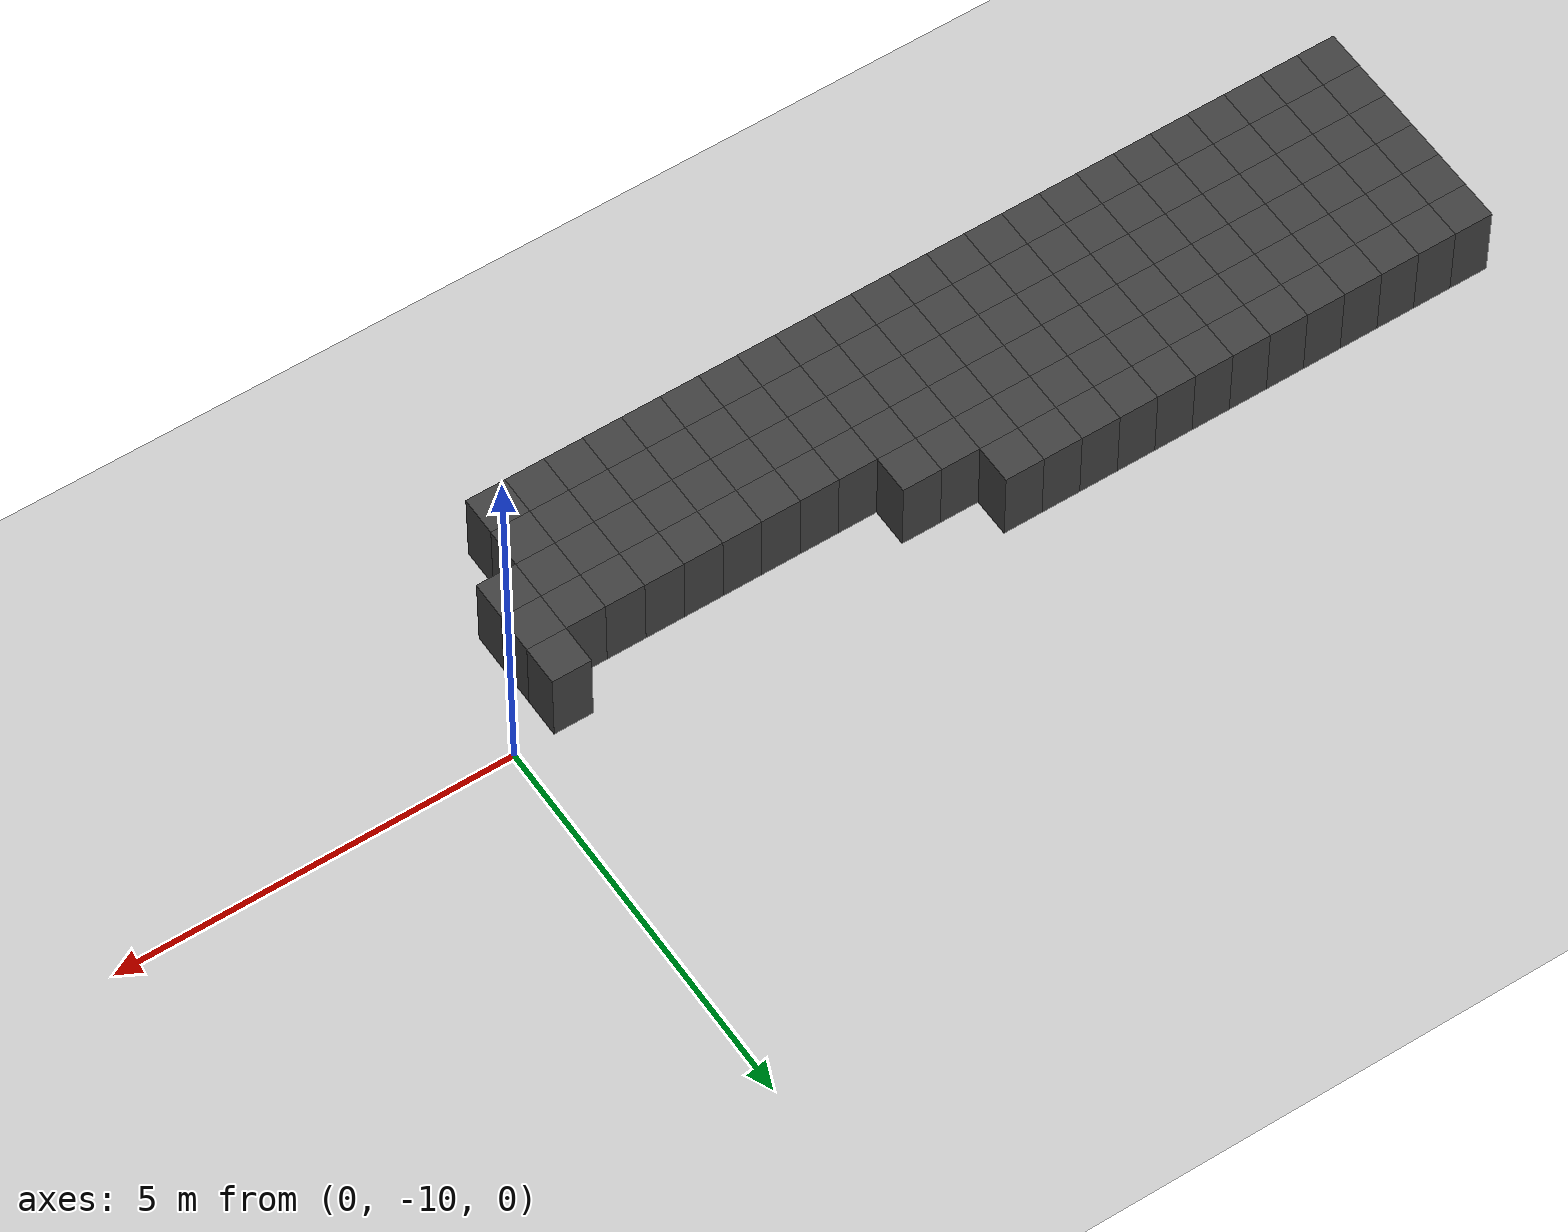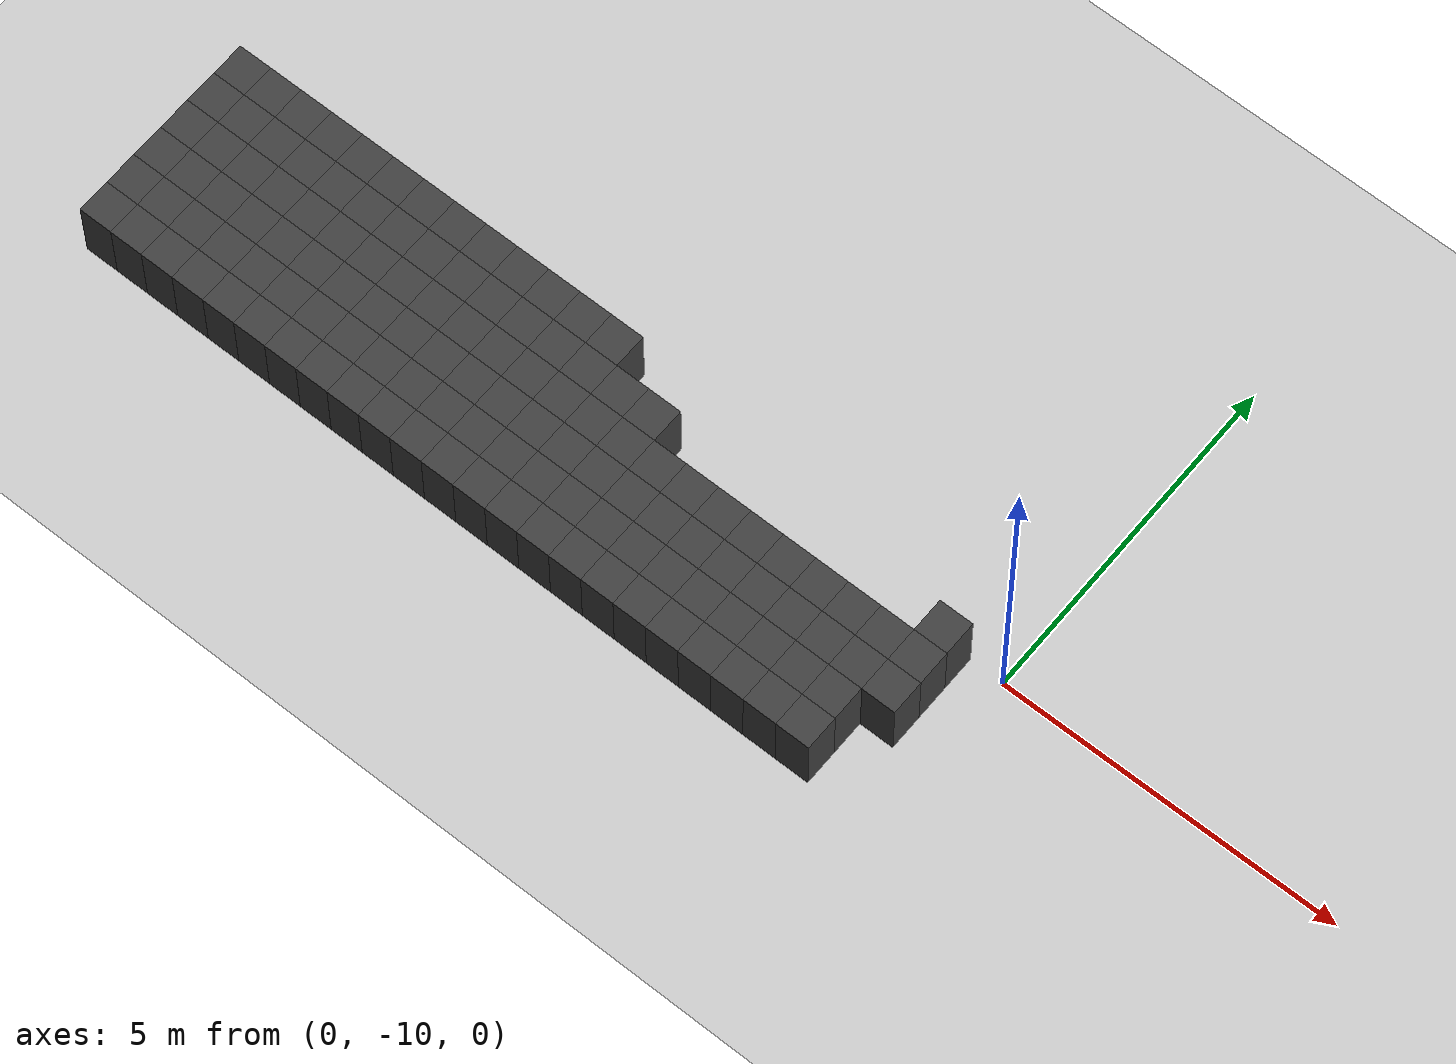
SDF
<sdf version="1.7">
 <world name="map_14074">
  <model name="ground_plane">
   <static>true</static>
   <link name="link">
    <collision name="collision">
     <geometry><plane><normal>0 0 1</normal><size>200 200</size></plane></geometry>
    </collision>
    <visual name="visual">
     <geometry><plane><normal>0 0 1</normal><size>200 200</size></plane></geometry>
     <material><ambient>0.8 0.8 0.8 1</ambient><diffuse>0.8 0.8 0.8 1</diffuse></material>
    </visual>
   </link>
  </model>
  <model name="maze_environment">
   <static>true</static>
   <link name="wall_1582">
    <pose>-12.250 -9.750 0.500 0 0 0</pose>
    <collision name="col"><geometry><box><size>0.5 0.5 1.0</size></box></geometry></collision>
    <visual name="vis">
     <geometry><box><size>0.5 0.5 1.0</size></box></geometry>
     <material><ambient>0.15 0.15 0.15 1</ambient><diffuse>0.25 0.25 0.25 1</diffuse></material>
    </visual>
   </link>
   <link name="wall_1583">
    <pose>-11.750 -9.750 0.500 0 0 0</pose>
    <collision name="col"><geometry><box><size>0.5 0.5 1.0</size></box></geometry></collision>
    <visual name="vis">
     <geometry><box><size>0.5 0.5 1.0</size></box></geometry>
     <material><ambient>0.15 0.15 0.15 1</ambient><diffuse>0.25 0.25 0.25 1</diffuse></material>
    </visual>
   </link>
   <link name="wall_1584">
    <pose>-11.250 -9.750 0.500 0 0 0</pose>
    <collision name="col"><geometry><box><size>0.5 0.5 1.0</size></box></geometry></collision>
    <visual name="vis">
     <geometry><box><size>0.5 0.5 1.0</size></box></geometry>
     <material><ambient>0.15 0.15 0.15 1</ambient><diffuse>0.25 0.25 0.25 1</diffuse></material>
    </visual>
   </link>
   <link name="wall_1585">
    <pose>-10.750 -9.750 0.500 0 0 0</pose>
    <collision name="col"><geometry><box><size>0.5 0.5 1.0</size></box></geometry></collision>
    <visual name="vis">
     <geometry><box><size>0.5 0.5 1.0</size></box></geometry>
     <material><ambient>0.15 0.15 0.15 1</ambient><diffuse>0.25 0.25 0.25 1</diffuse></material>
    </visual>
   </link>
   <link name="wall_1586">
    <pose>-10.250 -9.750 0.500 0 0 0</pose>
    <collision name="col"><geometry><box><size>0.5 0.5 1.0</size></box></geometry></collision>
    <visual name="vis">
     <geometry><box><size>0.5 0.5 1.0</size></box></geometry>
     <material><ambient>0.15 0.15 0.15 1</ambient><diffuse>0.25 0.25 0.25 1</diffuse></material>
    </visual>
   </link>
   <link name="wall_1587">
    <pose>-9.750 -9.750 0.500 0 0 0</pose>
    <collision name="col"><geometry><box><size>0.5 0.5 1.0</size></box></geometry></collision>
    <visual name="vis">
     <geometry><box><size>0.5 0.5 1.0</size></box></geometry>
     <material><ambient>0.15 0.15 0.15 1</ambient><diffuse>0.25 0.25 0.25 1</diffuse></material>
    </visual>
   </link>
   <link name="wall_1588">
    <pose>-9.250 -9.750 0.500 0 0 0</pose>
    <collision name="col"><geometry><box><size>0.5 0.5 1.0</size></box></geometry></collision>
    <visual name="vis">
     <geometry><box><size>0.5 0.5 1.0</size></box></geometry>
     <material><ambient>0.15 0.15 0.15 1</ambient><diffuse>0.25 0.25 0.25 1</diffuse></material>
    </visual>
   </link>
   <link name="wall_1589">
    <pose>-8.750 -9.750 0.500 0 0 0</pose>
    <collision name="col"><geometry><box><size>0.5 0.5 1.0</size></box></geometry></collision>
    <visual name="vis">
     <geometry><box><size>0.5 0.5 1.0</size></box></geometry>
     <material><ambient>0.15 0.15 0.15 1</ambient><diffuse>0.25 0.25 0.25 1</diffuse></material>
    </visual>
   </link>
   <link name="wall_1590">
    <pose>-8.250 -9.750 0.500 0 0 0</pose>
    <collision name="col"><geometry><box><size>0.5 0.5 1.0</size></box></geometry></collision>
    <visual name="vis">
     <geometry><box><size>0.5 0.5 1.0</size></box></geometry>
     <material><ambient>0.15 0.15 0.15 1</ambient><diffuse>0.25 0.25 0.25 1</diffuse></material>
    </visual>
   </link>
   <link name="wall_1591">
    <pose>-7.750 -9.750 0.500 0 0 0</pose>
    <collision name="col"><geometry><box><size>0.5 0.5 1.0</size></box></geometry></collision>
    <visual name="vis">
     <geometry><box><size>0.5 0.5 1.0</size></box></geometry>
     <material><ambient>0.15 0.15 0.15 1</ambient><diffuse>0.25 0.25 0.25 1</diffuse></material>
    </visual>
   </link>
   <link name="wall_1592">
    <pose>-7.250 -9.750 0.500 0 0 0</pose>
    <collision name="col"><geometry><box><size>0.5 0.5 1.0</size></box></geometry></collision>
    <visual name="vis">
     <geometry><box><size>0.5 0.5 1.0</size></box></geometry>
     <material><ambient>0.15 0.15 0.15 1</ambient><diffuse>0.25 0.25 0.25 1</diffuse></material>
    </visual>
   </link>
   <link name="wall_1593">
    <pose>-6.750 -9.750 0.500 0 0 0</pose>
    <collision name="col"><geometry><box><size>0.5 0.5 1.0</size></box></geometry></collision>
    <visual name="vis">
     <geometry><box><size>0.5 0.5 1.0</size></box></geometry>
     <material><ambient>0.15 0.15 0.15 1</ambient><diffuse>0.25 0.25 0.25 1</diffuse></material>
    </visual>
   </link>
   <link name="wall_1594">
    <pose>-6.250 -9.750 0.500 0 0 0</pose>
    <collision name="col"><geometry><box><size>0.5 0.5 1.0</size></box></geometry></collision>
    <visual name="vis">
     <geometry><box><size>0.5 0.5 1.0</size></box></geometry>
     <material><ambient>0.15 0.15 0.15 1</ambient><diffuse>0.25 0.25 0.25 1</diffuse></material>
    </visual>
   </link>
   <link name="wall_1621">
    <pose>-12.250 -10.250 0.500 0 0 0</pose>
    <collision name="col"><geometry><box><size>0.5 0.5 1.0</size></box></geometry></collision>
    <visual name="vis">
     <geometry><box><size>0.5 0.5 1.0</size></box></geometry>
     <material><ambient>0.15 0.15 0.15 1</ambient><diffuse>0.25 0.25 0.25 1</diffuse></material>
    </visual>
   </link>
   <link name="wall_1622">
    <pose>-11.750 -10.250 0.500 0 0 0</pose>
    <collision name="col"><geometry><box><size>0.5 0.5 1.0</size></box></geometry></collision>
    <visual name="vis">
     <geometry><box><size>0.5 0.5 1.0</size></box></geometry>
     <material><ambient>0.15 0.15 0.15 1</ambient><diffuse>0.25 0.25 0.25 1</diffuse></material>
    </visual>
   </link>
   <link name="wall_1623">
    <pose>-11.250 -10.250 0.500 0 0 0</pose>
    <collision name="col"><geometry><box><size>0.5 0.5 1.0</size></box></geometry></collision>
    <visual name="vis">
     <geometry><box><size>0.5 0.5 1.0</size></box></geometry>
     <material><ambient>0.15 0.15 0.15 1</ambient><diffuse>0.25 0.25 0.25 1</diffuse></material>
    </visual>
   </link>
   <link name="wall_1624">
    <pose>-10.750 -10.250 0.500 0 0 0</pose>
    <collision name="col"><geometry><box><size>0.5 0.5 1.0</size></box></geometry></collision>
    <visual name="vis">
     <geometry><box><size>0.5 0.5 1.0</size></box></geometry>
     <material><ambient>0.15 0.15 0.15 1</ambient><diffuse>0.25 0.25 0.25 1</diffuse></material>
    </visual>
   </link>
   <link name="wall_1625">
    <pose>-10.250 -10.250 0.500 0 0 0</pose>
    <collision name="col"><geometry><box><size>0.5 0.5 1.0</size></box></geometry></collision>
    <visual name="vis">
     <geometry><box><size>0.5 0.5 1.0</size></box></geometry>
     <material><ambient>0.15 0.15 0.15 1</ambient><diffuse>0.25 0.25 0.25 1</diffuse></material>
    </visual>
   </link>
   <link name="wall_1626">
    <pose>-9.750 -10.250 0.500 0 0 0</pose>
    <collision name="col"><geometry><box><size>0.5 0.5 1.0</size></box></geometry></collision>
    <visual name="vis">
     <geometry><box><size>0.5 0.5 1.0</size></box></geometry>
     <material><ambient>0.15 0.15 0.15 1</ambient><diffuse>0.25 0.25 0.25 1</diffuse></material>
    </visual>
   </link>
   <link name="wall_1627">
    <pose>-9.250 -10.250 0.500 0 0 0</pose>
    <collision name="col"><geometry><box><size>0.5 0.5 1.0</size></box></geometry></collision>
    <visual name="vis">
     <geometry><box><size>0.5 0.5 1.0</size></box></geometry>
     <material><ambient>0.15 0.15 0.15 1</ambient><diffuse>0.25 0.25 0.25 1</diffuse></material>
    </visual>
   </link>
   <link name="wall_1628">
    <pose>-8.750 -10.250 0.500 0 0 0</pose>
    <collision name="col"><geometry><box><size>0.5 0.5 1.0</size></box></geometry></collision>
    <visual name="vis">
     <geometry><box><size>0.5 0.5 1.0</size></box></geometry>
     <material><ambient>0.15 0.15 0.15 1</ambient><diffuse>0.25 0.25 0.25 1</diffuse></material>
    </visual>
   </link>
   <link name="wall_1629">
    <pose>-8.250 -10.250 0.500 0 0 0</pose>
    <collision name="col"><geometry><box><size>0.5 0.5 1.0</size></box></geometry></collision>
    <visual name="vis">
     <geometry><box><size>0.5 0.5 1.0</size></box></geometry>
     <material><ambient>0.15 0.15 0.15 1</ambient><diffuse>0.25 0.25 0.25 1</diffuse></material>
    </visual>
   </link>
   <link name="wall_1630">
    <pose>-7.750 -10.250 0.500 0 0 0</pose>
    <collision name="col"><geometry><box><size>0.5 0.5 1.0</size></box></geometry></collision>
    <visual name="vis">
     <geometry><box><size>0.5 0.5 1.0</size></box></geometry>
     <material><ambient>0.15 0.15 0.15 1</ambient><diffuse>0.25 0.25 0.25 1</diffuse></material>
    </visual>
   </link>
   <link name="wall_1631">
    <pose>-7.250 -10.250 0.500 0 0 0</pose>
    <collision name="col"><geometry><box><size>0.5 0.5 1.0</size></box></geometry></collision>
    <visual name="vis">
     <geometry><box><size>0.5 0.5 1.0</size></box></geometry>
     <material><ambient>0.15 0.15 0.15 1</ambient><diffuse>0.25 0.25 0.25 1</diffuse></material>
    </visual>
   </link>
   <link name="wall_1632">
    <pose>-6.750 -10.250 0.500 0 0 0</pose>
    <collision name="col"><geometry><box><size>0.5 0.5 1.0</size></box></geometry></collision>
    <visual name="vis">
     <geometry><box><size>0.5 0.5 1.0</size></box></geometry>
     <material><ambient>0.15 0.15 0.15 1</ambient><diffuse>0.25 0.25 0.25 1</diffuse></material>
    </visual>
   </link>
   <link name="wall_1633">
    <pose>-6.250 -10.250 0.500 0 0 0</pose>
    <collision name="col"><geometry><box><size>0.5 0.5 1.0</size></box></geometry></collision>
    <visual name="vis">
     <geometry><box><size>0.5 0.5 1.0</size></box></geometry>
     <material><ambient>0.15 0.15 0.15 1</ambient><diffuse>0.25 0.25 0.25 1</diffuse></material>
    </visual>
   </link>
   <link name="wall_1634">
    <pose>-5.750 -10.250 0.500 0 0 0</pose>
    <collision name="col"><geometry><box><size>0.5 0.5 1.0</size></box></geometry></collision>
    <visual name="vis">
     <geometry><box><size>0.5 0.5 1.0</size></box></geometry>
     <material><ambient>0.15 0.15 0.15 1</ambient><diffuse>0.25 0.25 0.25 1</diffuse></material>
    </visual>
   </link>
   <link name="wall_1635">
    <pose>-5.250 -10.250 0.500 0 0 0</pose>
    <collision name="col"><geometry><box><size>0.5 0.5 1.0</size></box></geometry></collision>
    <visual name="vis">
     <geometry><box><size>0.5 0.5 1.0</size></box></geometry>
     <material><ambient>0.15 0.15 0.15 1</ambient><diffuse>0.25 0.25 0.25 1</diffuse></material>
    </visual>
   </link>
   <link name="wall_1636">
    <pose>-0.750 -10.250 0.500 0 0 0</pose>
    <collision name="col"><geometry><box><size>0.5 0.5 1.0</size></box></geometry></collision>
    <visual name="vis">
     <geometry><box><size>0.5 0.5 1.0</size></box></geometry>
     <material><ambient>0.15 0.15 0.15 1</ambient><diffuse>0.25 0.25 0.25 1</diffuse></material>
    </visual>
   </link>
   <link name="wall_1662">
    <pose>-12.250 -10.750 0.500 0 0 0</pose>
    <collision name="col"><geometry><box><size>0.5 0.5 1.0</size></box></geometry></collision>
    <visual name="vis">
     <geometry><box><size>0.5 0.5 1.0</size></box></geometry>
     <material><ambient>0.15 0.15 0.15 1</ambient><diffuse>0.25 0.25 0.25 1</diffuse></material>
    </visual>
   </link>
   <link name="wall_1663">
    <pose>-11.750 -10.750 0.500 0 0 0</pose>
    <collision name="col"><geometry><box><size>0.5 0.5 1.0</size></box></geometry></collision>
    <visual name="vis">
     <geometry><box><size>0.5 0.5 1.0</size></box></geometry>
     <material><ambient>0.15 0.15 0.15 1</ambient><diffuse>0.25 0.25 0.25 1</diffuse></material>
    </visual>
   </link>
   <link name="wall_1664">
    <pose>-11.250 -10.750 0.500 0 0 0</pose>
    <collision name="col"><geometry><box><size>0.5 0.5 1.0</size></box></geometry></collision>
    <visual name="vis">
     <geometry><box><size>0.5 0.5 1.0</size></box></geometry>
     <material><ambient>0.15 0.15 0.15 1</ambient><diffuse>0.25 0.25 0.25 1</diffuse></material>
    </visual>
   </link>
   <link name="wall_1665">
    <pose>-10.750 -10.750 0.500 0 0 0</pose>
    <collision name="col"><geometry><box><size>0.5 0.5 1.0</size></box></geometry></collision>
    <visual name="vis">
     <geometry><box><size>0.5 0.5 1.0</size></box></geometry>
     <material><ambient>0.15 0.15 0.15 1</ambient><diffuse>0.25 0.25 0.25 1</diffuse></material>
    </visual>
   </link>
   <link name="wall_1666">
    <pose>-10.250 -10.750 0.500 0 0 0</pose>
    <collision name="col"><geometry><box><size>0.5 0.5 1.0</size></box></geometry></collision>
    <visual name="vis">
     <geometry><box><size>0.5 0.5 1.0</size></box></geometry>
     <material><ambient>0.15 0.15 0.15 1</ambient><diffuse>0.25 0.25 0.25 1</diffuse></material>
    </visual>
   </link>
   <link name="wall_1667">
    <pose>-9.750 -10.750 0.500 0 0 0</pose>
    <collision name="col"><geometry><box><size>0.5 0.5 1.0</size></box></geometry></collision>
    <visual name="vis">
     <geometry><box><size>0.5 0.5 1.0</size></box></geometry>
     <material><ambient>0.15 0.15 0.15 1</ambient><diffuse>0.25 0.25 0.25 1</diffuse></material>
    </visual>
   </link>
   <link name="wall_1668">
    <pose>-9.250 -10.750 0.500 0 0 0</pose>
    <collision name="col"><geometry><box><size>0.5 0.5 1.0</size></box></geometry></collision>
    <visual name="vis">
     <geometry><box><size>0.5 0.5 1.0</size></box></geometry>
     <material><ambient>0.15 0.15 0.15 1</ambient><diffuse>0.25 0.25 0.25 1</diffuse></material>
    </visual>
   </link>
   <link name="wall_1669">
    <pose>-8.750 -10.750 0.500 0 0 0</pose>
    <collision name="col"><geometry><box><size>0.5 0.5 1.0</size></box></geometry></collision>
    <visual name="vis">
     <geometry><box><size>0.5 0.5 1.0</size></box></geometry>
     <material><ambient>0.15 0.15 0.15 1</ambient><diffuse>0.25 0.25 0.25 1</diffuse></material>
    </visual>
   </link>
   <link name="wall_1670">
    <pose>-8.250 -10.750 0.500 0 0 0</pose>
    <collision name="col"><geometry><box><size>0.5 0.5 1.0</size></box></geometry></collision>
    <visual name="vis">
     <geometry><box><size>0.5 0.5 1.0</size></box></geometry>
     <material><ambient>0.15 0.15 0.15 1</ambient><diffuse>0.25 0.25 0.25 1</diffuse></material>
    </visual>
   </link>
   <link name="wall_1671">
    <pose>-7.750 -10.750 0.500 0 0 0</pose>
    <collision name="col"><geometry><box><size>0.5 0.5 1.0</size></box></geometry></collision>
    <visual name="vis">
     <geometry><box><size>0.5 0.5 1.0</size></box></geometry>
     <material><ambient>0.15 0.15 0.15 1</ambient><diffuse>0.25 0.25 0.25 1</diffuse></material>
    </visual>
   </link>
   <link name="wall_1672">
    <pose>-7.250 -10.750 0.500 0 0 0</pose>
    <collision name="col"><geometry><box><size>0.5 0.5 1.0</size></box></geometry></collision>
    <visual name="vis">
     <geometry><box><size>0.5 0.5 1.0</size></box></geometry>
     <material><ambient>0.15 0.15 0.15 1</ambient><diffuse>0.25 0.25 0.25 1</diffuse></material>
    </visual>
   </link>
   <link name="wall_1673">
    <pose>-6.750 -10.750 0.500 0 0 0</pose>
    <collision name="col"><geometry><box><size>0.5 0.5 1.0</size></box></geometry></collision>
    <visual name="vis">
     <geometry><box><size>0.5 0.5 1.0</size></box></geometry>
     <material><ambient>0.15 0.15 0.15 1</ambient><diffuse>0.25 0.25 0.25 1</diffuse></material>
    </visual>
   </link>
   <link name="wall_1674">
    <pose>-6.250 -10.750 0.500 0 0 0</pose>
    <collision name="col"><geometry><box><size>0.5 0.5 1.0</size></box></geometry></collision>
    <visual name="vis">
     <geometry><box><size>0.5 0.5 1.0</size></box></geometry>
     <material><ambient>0.15 0.15 0.15 1</ambient><diffuse>0.25 0.25 0.25 1</diffuse></material>
    </visual>
   </link>
   <link name="wall_1675">
    <pose>-5.750 -10.750 0.500 0 0 0</pose>
    <collision name="col"><geometry><box><size>0.5 0.5 1.0</size></box></geometry></collision>
    <visual name="vis">
     <geometry><box><size>0.5 0.5 1.0</size></box></geometry>
     <material><ambient>0.15 0.15 0.15 1</ambient><diffuse>0.25 0.25 0.25 1</diffuse></material>
    </visual>
   </link>
   <link name="wall_1676">
    <pose>-5.250 -10.750 0.500 0 0 0</pose>
    <collision name="col"><geometry><box><size>0.5 0.5 1.0</size></box></geometry></collision>
    <visual name="vis">
     <geometry><box><size>0.5 0.5 1.0</size></box></geometry>
     <material><ambient>0.15 0.15 0.15 1</ambient><diffuse>0.25 0.25 0.25 1</diffuse></material>
    </visual>
   </link>
   <link name="wall_1677">
    <pose>-4.750 -10.750 0.500 0 0 0</pose>
    <collision name="col"><geometry><box><size>0.5 0.5 1.0</size></box></geometry></collision>
    <visual name="vis">
     <geometry><box><size>0.5 0.5 1.0</size></box></geometry>
     <material><ambient>0.15 0.15 0.15 1</ambient><diffuse>0.25 0.25 0.25 1</diffuse></material>
    </visual>
   </link>
   <link name="wall_1678">
    <pose>-4.250 -10.750 0.500 0 0 0</pose>
    <collision name="col"><geometry><box><size>0.5 0.5 1.0</size></box></geometry></collision>
    <visual name="vis">
     <geometry><box><size>0.5 0.5 1.0</size></box></geometry>
     <material><ambient>0.15 0.15 0.15 1</ambient><diffuse>0.25 0.25 0.25 1</diffuse></material>
    </visual>
   </link>
   <link name="wall_1679">
    <pose>-3.750 -10.750 0.500 0 0 0</pose>
    <collision name="col"><geometry><box><size>0.5 0.5 1.0</size></box></geometry></collision>
    <visual name="vis">
     <geometry><box><size>0.5 0.5 1.0</size></box></geometry>
     <material><ambient>0.15 0.15 0.15 1</ambient><diffuse>0.25 0.25 0.25 1</diffuse></material>
    </visual>
   </link>
   <link name="wall_1680">
    <pose>-3.250 -10.750 0.500 0 0 0</pose>
    <collision name="col"><geometry><box><size>0.5 0.5 1.0</size></box></geometry></collision>
    <visual name="vis">
     <geometry><box><size>0.5 0.5 1.0</size></box></geometry>
     <material><ambient>0.15 0.15 0.15 1</ambient><diffuse>0.25 0.25 0.25 1</diffuse></material>
    </visual>
   </link>
   <link name="wall_1681">
    <pose>-2.750 -10.750 0.500 0 0 0</pose>
    <collision name="col"><geometry><box><size>0.5 0.5 1.0</size></box></geometry></collision>
    <visual name="vis">
     <geometry><box><size>0.5 0.5 1.0</size></box></geometry>
     <material><ambient>0.15 0.15 0.15 1</ambient><diffuse>0.25 0.25 0.25 1</diffuse></material>
    </visual>
   </link>
   <link name="wall_1682">
    <pose>-2.250 -10.750 0.500 0 0 0</pose>
    <collision name="col"><geometry><box><size>0.5 0.5 1.0</size></box></geometry></collision>
    <visual name="vis">
     <geometry><box><size>0.5 0.5 1.0</size></box></geometry>
     <material><ambient>0.15 0.15 0.15 1</ambient><diffuse>0.25 0.25 0.25 1</diffuse></material>
    </visual>
   </link>
   <link name="wall_1683">
    <pose>-1.750 -10.750 0.500 0 0 0</pose>
    <collision name="col"><geometry><box><size>0.5 0.5 1.0</size></box></geometry></collision>
    <visual name="vis">
     <geometry><box><size>0.5 0.5 1.0</size></box></geometry>
     <material><ambient>0.15 0.15 0.15 1</ambient><diffuse>0.25 0.25 0.25 1</diffuse></material>
    </visual>
   </link>
   <link name="wall_1684">
    <pose>-1.250 -10.750 0.500 0 0 0</pose>
    <collision name="col"><geometry><box><size>0.5 0.5 1.0</size></box></geometry></collision>
    <visual name="vis">
     <geometry><box><size>0.5 0.5 1.0</size></box></geometry>
     <material><ambient>0.15 0.15 0.15 1</ambient><diffuse>0.25 0.25 0.25 1</diffuse></material>
    </visual>
   </link>
   <link name="wall_1685">
    <pose>-0.750 -10.750 0.500 0 0 0</pose>
    <collision name="col"><geometry><box><size>0.5 0.5 1.0</size></box></geometry></collision>
    <visual name="vis">
     <geometry><box><size>0.5 0.5 1.0</size></box></geometry>
     <material><ambient>0.15 0.15 0.15 1</ambient><diffuse>0.25 0.25 0.25 1</diffuse></material>
    </visual>
   </link>
   <link name="wall_1708">
    <pose>-12.250 -11.250 0.500 0 0 0</pose>
    <collision name="col"><geometry><box><size>0.5 0.5 1.0</size></box></geometry></collision>
    <visual name="vis">
     <geometry><box><size>0.5 0.5 1.0</size></box></geometry>
     <material><ambient>0.15 0.15 0.15 1</ambient><diffuse>0.25 0.25 0.25 1</diffuse></material>
    </visual>
   </link>
   <link name="wall_1709">
    <pose>-11.750 -11.250 0.500 0 0 0</pose>
    <collision name="col"><geometry><box><size>0.5 0.5 1.0</size></box></geometry></collision>
    <visual name="vis">
     <geometry><box><size>0.5 0.5 1.0</size></box></geometry>
     <material><ambient>0.15 0.15 0.15 1</ambient><diffuse>0.25 0.25 0.25 1</diffuse></material>
    </visual>
   </link>
   <link name="wall_1710">
    <pose>-11.250 -11.250 0.500 0 0 0</pose>
    <collision name="col"><geometry><box><size>0.5 0.5 1.0</size></box></geometry></collision>
    <visual name="vis">
     <geometry><box><size>0.5 0.5 1.0</size></box></geometry>
     <material><ambient>0.15 0.15 0.15 1</ambient><diffuse>0.25 0.25 0.25 1</diffuse></material>
    </visual>
   </link>
   <link name="wall_1711">
    <pose>-10.750 -11.250 0.500 0 0 0</pose>
    <collision name="col"><geometry><box><size>0.5 0.5 1.0</size></box></geometry></collision>
    <visual name="vis">
     <geometry><box><size>0.5 0.5 1.0</size></box></geometry>
     <material><ambient>0.15 0.15 0.15 1</ambient><diffuse>0.25 0.25 0.25 1</diffuse></material>
    </visual>
   </link>
   <link name="wall_1712">
    <pose>-10.250 -11.250 0.500 0 0 0</pose>
    <collision name="col"><geometry><box><size>0.5 0.5 1.0</size></box></geometry></collision>
    <visual name="vis">
     <geometry><box><size>0.5 0.5 1.0</size></box></geometry>
     <material><ambient>0.15 0.15 0.15 1</ambient><diffuse>0.25 0.25 0.25 1</diffuse></material>
    </visual>
   </link>
   <link name="wall_1713">
    <pose>-9.750 -11.250 0.500 0 0 0</pose>
    <collision name="col"><geometry><box><size>0.5 0.5 1.0</size></box></geometry></collision>
    <visual name="vis">
     <geometry><box><size>0.5 0.5 1.0</size></box></geometry>
     <material><ambient>0.15 0.15 0.15 1</ambient><diffuse>0.25 0.25 0.25 1</diffuse></material>
    </visual>
   </link>
   <link name="wall_1714">
    <pose>-9.250 -11.250 0.500 0 0 0</pose>
    <collision name="col"><geometry><box><size>0.5 0.5 1.0</size></box></geometry></collision>
    <visual name="vis">
     <geometry><box><size>0.5 0.5 1.0</size></box></geometry>
     <material><ambient>0.15 0.15 0.15 1</ambient><diffuse>0.25 0.25 0.25 1</diffuse></material>
    </visual>
   </link>
   <link name="wall_1715">
    <pose>-8.750 -11.250 0.500 0 0 0</pose>
    <collision name="col"><geometry><box><size>0.5 0.5 1.0</size></box></geometry></collision>
    <visual name="vis">
     <geometry><box><size>0.5 0.5 1.0</size></box></geometry>
     <material><ambient>0.15 0.15 0.15 1</ambient><diffuse>0.25 0.25 0.25 1</diffuse></material>
    </visual>
   </link>
   <link name="wall_1716">
    <pose>-8.250 -11.250 0.500 0 0 0</pose>
    <collision name="col"><geometry><box><size>0.5 0.5 1.0</size></box></geometry></collision>
    <visual name="vis">
     <geometry><box><size>0.5 0.5 1.0</size></box></geometry>
     <material><ambient>0.15 0.15 0.15 1</ambient><diffuse>0.25 0.25 0.25 1</diffuse></material>
    </visual>
   </link>
   <link name="wall_1717">
    <pose>-7.750 -11.250 0.500 0 0 0</pose>
    <collision name="col"><geometry><box><size>0.5 0.5 1.0</size></box></geometry></collision>
    <visual name="vis">
     <geometry><box><size>0.5 0.5 1.0</size></box></geometry>
     <material><ambient>0.15 0.15 0.15 1</ambient><diffuse>0.25 0.25 0.25 1</diffuse></material>
    </visual>
   </link>
   <link name="wall_1718">
    <pose>-7.250 -11.250 0.500 0 0 0</pose>
    <collision name="col"><geometry><box><size>0.5 0.5 1.0</size></box></geometry></collision>
    <visual name="vis">
     <geometry><box><size>0.5 0.5 1.0</size></box></geometry>
     <material><ambient>0.15 0.15 0.15 1</ambient><diffuse>0.25 0.25 0.25 1</diffuse></material>
    </visual>
   </link>
   <link name="wall_1719">
    <pose>-6.750 -11.250 0.500 0 0 0</pose>
    <collision name="col"><geometry><box><size>0.5 0.5 1.0</size></box></geometry></collision>
    <visual name="vis">
     <geometry><box><size>0.5 0.5 1.0</size></box></geometry>
     <material><ambient>0.15 0.15 0.15 1</ambient><diffuse>0.25 0.25 0.25 1</diffuse></material>
    </visual>
   </link>
   <link name="wall_1720">
    <pose>-6.250 -11.250 0.500 0 0 0</pose>
    <collision name="col"><geometry><box><size>0.5 0.5 1.0</size></box></geometry></collision>
    <visual name="vis">
     <geometry><box><size>0.5 0.5 1.0</size></box></geometry>
     <material><ambient>0.15 0.15 0.15 1</ambient><diffuse>0.25 0.25 0.25 1</diffuse></material>
    </visual>
   </link>
   <link name="wall_1721">
    <pose>-5.750 -11.250 0.500 0 0 0</pose>
    <collision name="col"><geometry><box><size>0.5 0.5 1.0</size></box></geometry></collision>
    <visual name="vis">
     <geometry><box><size>0.5 0.5 1.0</size></box></geometry>
     <material><ambient>0.15 0.15 0.15 1</ambient><diffuse>0.25 0.25 0.25 1</diffuse></material>
    </visual>
   </link>
   <link name="wall_1722">
    <pose>-5.250 -11.250 0.500 0 0 0</pose>
    <collision name="col"><geometry><box><size>0.5 0.5 1.0</size></box></geometry></collision>
    <visual name="vis">
     <geometry><box><size>0.5 0.5 1.0</size></box></geometry>
     <material><ambient>0.15 0.15 0.15 1</ambient><diffuse>0.25 0.25 0.25 1</diffuse></material>
    </visual>
   </link>
   <link name="wall_1723">
    <pose>-4.750 -11.250 0.500 0 0 0</pose>
    <collision name="col"><geometry><box><size>0.5 0.5 1.0</size></box></geometry></collision>
    <visual name="vis">
     <geometry><box><size>0.5 0.5 1.0</size></box></geometry>
     <material><ambient>0.15 0.15 0.15 1</ambient><diffuse>0.25 0.25 0.25 1</diffuse></material>
    </visual>
   </link>
   <link name="wall_1724">
    <pose>-4.250 -11.250 0.500 0 0 0</pose>
    <collision name="col"><geometry><box><size>0.5 0.5 1.0</size></box></geometry></collision>
    <visual name="vis">
     <geometry><box><size>0.5 0.5 1.0</size></box></geometry>
     <material><ambient>0.15 0.15 0.15 1</ambient><diffuse>0.25 0.25 0.25 1</diffuse></material>
    </visual>
   </link>
   <link name="wall_1725">
    <pose>-3.750 -11.250 0.500 0 0 0</pose>
    <collision name="col"><geometry><box><size>0.5 0.5 1.0</size></box></geometry></collision>
    <visual name="vis">
     <geometry><box><size>0.5 0.5 1.0</size></box></geometry>
     <material><ambient>0.15 0.15 0.15 1</ambient><diffuse>0.25 0.25 0.25 1</diffuse></material>
    </visual>
   </link>
   <link name="wall_1726">
    <pose>-3.250 -11.250 0.500 0 0 0</pose>
    <collision name="col"><geometry><box><size>0.5 0.5 1.0</size></box></geometry></collision>
    <visual name="vis">
     <geometry><box><size>0.5 0.5 1.0</size></box></geometry>
     <material><ambient>0.15 0.15 0.15 1</ambient><diffuse>0.25 0.25 0.25 1</diffuse></material>
    </visual>
   </link>
   <link name="wall_1727">
    <pose>-2.750 -11.250 0.500 0 0 0</pose>
    <collision name="col"><geometry><box><size>0.5 0.5 1.0</size></box></geometry></collision>
    <visual name="vis">
     <geometry><box><size>0.5 0.5 1.0</size></box></geometry>
     <material><ambient>0.15 0.15 0.15 1</ambient><diffuse>0.25 0.25 0.25 1</diffuse></material>
    </visual>
   </link>
   <link name="wall_1728">
    <pose>-2.250 -11.250 0.500 0 0 0</pose>
    <collision name="col"><geometry><box><size>0.5 0.5 1.0</size></box></geometry></collision>
    <visual name="vis">
     <geometry><box><size>0.5 0.5 1.0</size></box></geometry>
     <material><ambient>0.15 0.15 0.15 1</ambient><diffuse>0.25 0.25 0.25 1</diffuse></material>
    </visual>
   </link>
   <link name="wall_1729">
    <pose>-1.750 -11.250 0.500 0 0 0</pose>
    <collision name="col"><geometry><box><size>0.5 0.5 1.0</size></box></geometry></collision>
    <visual name="vis">
     <geometry><box><size>0.5 0.5 1.0</size></box></geometry>
     <material><ambient>0.15 0.15 0.15 1</ambient><diffuse>0.25 0.25 0.25 1</diffuse></material>
    </visual>
   </link>
   <link name="wall_1730">
    <pose>-1.250 -11.250 0.500 0 0 0</pose>
    <collision name="col"><geometry><box><size>0.5 0.5 1.0</size></box></geometry></collision>
    <visual name="vis">
     <geometry><box><size>0.5 0.5 1.0</size></box></geometry>
     <material><ambient>0.15 0.15 0.15 1</ambient><diffuse>0.25 0.25 0.25 1</diffuse></material>
    </visual>
   </link>
   <link name="wall_1731">
    <pose>-0.750 -11.250 0.500 0 0 0</pose>
    <collision name="col"><geometry><box><size>0.5 0.5 1.0</size></box></geometry></collision>
    <visual name="vis">
     <geometry><box><size>0.5 0.5 1.0</size></box></geometry>
     <material><ambient>0.15 0.15 0.15 1</ambient><diffuse>0.25 0.25 0.25 1</diffuse></material>
    </visual>
   </link>
   <link name="wall_1750">
    <pose>-12.250 -11.750 0.500 0 0 0</pose>
    <collision name="col"><geometry><box><size>0.5 0.5 1.0</size></box></geometry></collision>
    <visual name="vis">
     <geometry><box><size>0.5 0.5 1.0</size></box></geometry>
     <material><ambient>0.15 0.15 0.15 1</ambient><diffuse>0.25 0.25 0.25 1</diffuse></material>
    </visual>
   </link>
   <link name="wall_1751">
    <pose>-11.750 -11.750 0.500 0 0 0</pose>
    <collision name="col"><geometry><box><size>0.5 0.5 1.0</size></box></geometry></collision>
    <visual name="vis">
     <geometry><box><size>0.5 0.5 1.0</size></box></geometry>
     <material><ambient>0.15 0.15 0.15 1</ambient><diffuse>0.25 0.25 0.25 1</diffuse></material>
    </visual>
   </link>
   <link name="wall_1752">
    <pose>-11.250 -11.750 0.500 0 0 0</pose>
    <collision name="col"><geometry><box><size>0.5 0.5 1.0</size></box></geometry></collision>
    <visual name="vis">
     <geometry><box><size>0.5 0.5 1.0</size></box></geometry>
     <material><ambient>0.15 0.15 0.15 1</ambient><diffuse>0.25 0.25 0.25 1</diffuse></material>
    </visual>
   </link>
   <link name="wall_1753">
    <pose>-10.750 -11.750 0.500 0 0 0</pose>
    <collision name="col"><geometry><box><size>0.5 0.5 1.0</size></box></geometry></collision>
    <visual name="vis">
     <geometry><box><size>0.5 0.5 1.0</size></box></geometry>
     <material><ambient>0.15 0.15 0.15 1</ambient><diffuse>0.25 0.25 0.25 1</diffuse></material>
    </visual>
   </link>
   <link name="wall_1754">
    <pose>-10.250 -11.750 0.500 0 0 0</pose>
    <collision name="col"><geometry><box><size>0.5 0.5 1.0</size></box></geometry></collision>
    <visual name="vis">
     <geometry><box><size>0.5 0.5 1.0</size></box></geometry>
     <material><ambient>0.15 0.15 0.15 1</ambient><diffuse>0.25 0.25 0.25 1</diffuse></material>
    </visual>
   </link>
   <link name="wall_1755">
    <pose>-9.750 -11.750 0.500 0 0 0</pose>
    <collision name="col"><geometry><box><size>0.5 0.5 1.0</size></box></geometry></collision>
    <visual name="vis">
     <geometry><box><size>0.5 0.5 1.0</size></box></geometry>
     <material><ambient>0.15 0.15 0.15 1</ambient><diffuse>0.25 0.25 0.25 1</diffuse></material>
    </visual>
   </link>
   <link name="wall_1756">
    <pose>-9.250 -11.750 0.500 0 0 0</pose>
    <collision name="col"><geometry><box><size>0.5 0.5 1.0</size></box></geometry></collision>
    <visual name="vis">
     <geometry><box><size>0.5 0.5 1.0</size></box></geometry>
     <material><ambient>0.15 0.15 0.15 1</ambient><diffuse>0.25 0.25 0.25 1</diffuse></material>
    </visual>
   </link>
   <link name="wall_1757">
    <pose>-8.750 -11.750 0.500 0 0 0</pose>
    <collision name="col"><geometry><box><size>0.5 0.5 1.0</size></box></geometry></collision>
    <visual name="vis">
     <geometry><box><size>0.5 0.5 1.0</size></box></geometry>
     <material><ambient>0.15 0.15 0.15 1</ambient><diffuse>0.25 0.25 0.25 1</diffuse></material>
    </visual>
   </link>
   <link name="wall_1758">
    <pose>-8.250 -11.750 0.500 0 0 0</pose>
    <collision name="col"><geometry><box><size>0.5 0.5 1.0</size></box></geometry></collision>
    <visual name="vis">
     <geometry><box><size>0.5 0.5 1.0</size></box></geometry>
     <material><ambient>0.15 0.15 0.15 1</ambient><diffuse>0.25 0.25 0.25 1</diffuse></material>
    </visual>
   </link>
   <link name="wall_1759">
    <pose>-7.750 -11.750 0.500 0 0 0</pose>
    <collision name="col"><geometry><box><size>0.5 0.5 1.0</size></box></geometry></collision>
    <visual name="vis">
     <geometry><box><size>0.5 0.5 1.0</size></box></geometry>
     <material><ambient>0.15 0.15 0.15 1</ambient><diffuse>0.25 0.25 0.25 1</diffuse></material>
    </visual>
   </link>
   <link name="wall_1760">
    <pose>-7.250 -11.750 0.500 0 0 0</pose>
    <collision name="col"><geometry><box><size>0.5 0.5 1.0</size></box></geometry></collision>
    <visual name="vis">
     <geometry><box><size>0.5 0.5 1.0</size></box></geometry>
     <material><ambient>0.15 0.15 0.15 1</ambient><diffuse>0.25 0.25 0.25 1</diffuse></material>
    </visual>
   </link>
   <link name="wall_1761">
    <pose>-6.750 -11.750 0.500 0 0 0</pose>
    <collision name="col"><geometry><box><size>0.5 0.5 1.0</size></box></geometry></collision>
    <visual name="vis">
     <geometry><box><size>0.5 0.5 1.0</size></box></geometry>
     <material><ambient>0.15 0.15 0.15 1</ambient><diffuse>0.25 0.25 0.25 1</diffuse></material>
    </visual>
   </link>
   <link name="wall_1762">
    <pose>-6.250 -11.750 0.500 0 0 0</pose>
    <collision name="col"><geometry><box><size>0.5 0.5 1.0</size></box></geometry></collision>
    <visual name="vis">
     <geometry><box><size>0.5 0.5 1.0</size></box></geometry>
     <material><ambient>0.15 0.15 0.15 1</ambient><diffuse>0.25 0.25 0.25 1</diffuse></material>
    </visual>
   </link>
   <link name="wall_1763">
    <pose>-5.750 -11.750 0.500 0 0 0</pose>
    <collision name="col"><geometry><box><size>0.5 0.5 1.0</size></box></geometry></collision>
    <visual name="vis">
     <geometry><box><size>0.5 0.5 1.0</size></box></geometry>
     <material><ambient>0.15 0.15 0.15 1</ambient><diffuse>0.25 0.25 0.25 1</diffuse></material>
    </visual>
   </link>
   <link name="wall_1764">
    <pose>-5.250 -11.750 0.500 0 0 0</pose>
    <collision name="col"><geometry><box><size>0.5 0.5 1.0</size></box></geometry></collision>
    <visual name="vis">
     <geometry><box><size>0.5 0.5 1.0</size></box></geometry>
     <material><ambient>0.15 0.15 0.15 1</ambient><diffuse>0.25 0.25 0.25 1</diffuse></material>
    </visual>
   </link>
   <link name="wall_1765">
    <pose>-4.750 -11.750 0.500 0 0 0</pose>
    <collision name="col"><geometry><box><size>0.5 0.5 1.0</size></box></geometry></collision>
    <visual name="vis">
     <geometry><box><size>0.5 0.5 1.0</size></box></geometry>
     <material><ambient>0.15 0.15 0.15 1</ambient><diffuse>0.25 0.25 0.25 1</diffuse></material>
    </visual>
   </link>
   <link name="wall_1766">
    <pose>-4.250 -11.750 0.500 0 0 0</pose>
    <collision name="col"><geometry><box><size>0.5 0.5 1.0</size></box></geometry></collision>
    <visual name="vis">
     <geometry><box><size>0.5 0.5 1.0</size></box></geometry>
     <material><ambient>0.15 0.15 0.15 1</ambient><diffuse>0.25 0.25 0.25 1</diffuse></material>
    </visual>
   </link>
   <link name="wall_1767">
    <pose>-3.750 -11.750 0.500 0 0 0</pose>
    <collision name="col"><geometry><box><size>0.5 0.5 1.0</size></box></geometry></collision>
    <visual name="vis">
     <geometry><box><size>0.5 0.5 1.0</size></box></geometry>
     <material><ambient>0.15 0.15 0.15 1</ambient><diffuse>0.25 0.25 0.25 1</diffuse></material>
    </visual>
   </link>
   <link name="wall_1768">
    <pose>-3.250 -11.750 0.500 0 0 0</pose>
    <collision name="col"><geometry><box><size>0.5 0.5 1.0</size></box></geometry></collision>
    <visual name="vis">
     <geometry><box><size>0.5 0.5 1.0</size></box></geometry>
     <material><ambient>0.15 0.15 0.15 1</ambient><diffuse>0.25 0.25 0.25 1</diffuse></material>
    </visual>
   </link>
   <link name="wall_1769">
    <pose>-2.750 -11.750 0.500 0 0 0</pose>
    <collision name="col"><geometry><box><size>0.5 0.5 1.0</size></box></geometry></collision>
    <visual name="vis">
     <geometry><box><size>0.5 0.5 1.0</size></box></geometry>
     <material><ambient>0.15 0.15 0.15 1</ambient><diffuse>0.25 0.25 0.25 1</diffuse></material>
    </visual>
   </link>
   <link name="wall_1770">
    <pose>-2.250 -11.750 0.500 0 0 0</pose>
    <collision name="col"><geometry><box><size>0.5 0.5 1.0</size></box></geometry></collision>
    <visual name="vis">
     <geometry><box><size>0.5 0.5 1.0</size></box></geometry>
     <material><ambient>0.15 0.15 0.15 1</ambient><diffuse>0.25 0.25 0.25 1</diffuse></material>
    </visual>
   </link>
   <link name="wall_1771">
    <pose>-1.750 -11.750 0.500 0 0 0</pose>
    <collision name="col"><geometry><box><size>0.5 0.5 1.0</size></box></geometry></collision>
    <visual name="vis">
     <geometry><box><size>0.5 0.5 1.0</size></box></geometry>
     <material><ambient>0.15 0.15 0.15 1</ambient><diffuse>0.25 0.25 0.25 1</diffuse></material>
    </visual>
   </link>
   <link name="wall_1772">
    <pose>-1.250 -11.750 0.500 0 0 0</pose>
    <collision name="col"><geometry><box><size>0.5 0.5 1.0</size></box></geometry></collision>
    <visual name="vis">
     <geometry><box><size>0.5 0.5 1.0</size></box></geometry>
     <material><ambient>0.15 0.15 0.15 1</ambient><diffuse>0.25 0.25 0.25 1</diffuse></material>
    </visual>
   </link>
   <link name="wall_1797">
    <pose>-12.250 -12.250 0.500 0 0 0</pose>
    <collision name="col"><geometry><box><size>0.5 0.5 1.0</size></box></geometry></collision>
    <visual name="vis">
     <geometry><box><size>0.5 0.5 1.0</size></box></geometry>
     <material><ambient>0.15 0.15 0.15 1</ambient><diffuse>0.25 0.25 0.25 1</diffuse></material>
    </visual>
   </link>
   <link name="wall_1798">
    <pose>-11.750 -12.250 0.500 0 0 0</pose>
    <collision name="col"><geometry><box><size>0.5 0.5 1.0</size></box></geometry></collision>
    <visual name="vis">
     <geometry><box><size>0.5 0.5 1.0</size></box></geometry>
     <material><ambient>0.15 0.15 0.15 1</ambient><diffuse>0.25 0.25 0.25 1</diffuse></material>
    </visual>
   </link>
   <link name="wall_1799">
    <pose>-11.250 -12.250 0.500 0 0 0</pose>
    <collision name="col"><geometry><box><size>0.5 0.5 1.0</size></box></geometry></collision>
    <visual name="vis">
     <geometry><box><size>0.5 0.5 1.0</size></box></geometry>
     <material><ambient>0.15 0.15 0.15 1</ambient><diffuse>0.25 0.25 0.25 1</diffuse></material>
    </visual>
   </link>
   <link name="wall_1800">
    <pose>-10.750 -12.250 0.500 0 0 0</pose>
    <collision name="col"><geometry><box><size>0.5 0.5 1.0</size></box></geometry></collision>
    <visual name="vis">
     <geometry><box><size>0.5 0.5 1.0</size></box></geometry>
     <material><ambient>0.15 0.15 0.15 1</ambient><diffuse>0.25 0.25 0.25 1</diffuse></material>
    </visual>
   </link>
   <link name="wall_1801">
    <pose>-10.250 -12.250 0.500 0 0 0</pose>
    <collision name="col"><geometry><box><size>0.5 0.5 1.0</size></box></geometry></collision>
    <visual name="vis">
     <geometry><box><size>0.5 0.5 1.0</size></box></geometry>
     <material><ambient>0.15 0.15 0.15 1</ambient><diffuse>0.25 0.25 0.25 1</diffuse></material>
    </visual>
   </link>
   <link name="wall_1802">
    <pose>-9.750 -12.250 0.500 0 0 0</pose>
    <collision name="col"><geometry><box><size>0.5 0.5 1.0</size></box></geometry></collision>
    <visual name="vis">
     <geometry><box><size>0.5 0.5 1.0</size></box></geometry>
     <material><ambient>0.15 0.15 0.15 1</ambient><diffuse>0.25 0.25 0.25 1</diffuse></material>
    </visual>
   </link>
   <link name="wall_1803">
    <pose>-9.250 -12.250 0.500 0 0 0</pose>
    <collision name="col"><geometry><box><size>0.5 0.5 1.0</size></box></geometry></collision>
    <visual name="vis">
     <geometry><box><size>0.5 0.5 1.0</size></box></geometry>
     <material><ambient>0.15 0.15 0.15 1</ambient><diffuse>0.25 0.25 0.25 1</diffuse></material>
    </visual>
   </link>
   <link name="wall_1804">
    <pose>-8.750 -12.250 0.500 0 0 0</pose>
    <collision name="col"><geometry><box><size>0.5 0.5 1.0</size></box></geometry></collision>
    <visual name="vis">
     <geometry><box><size>0.5 0.5 1.0</size></box></geometry>
     <material><ambient>0.15 0.15 0.15 1</ambient><diffuse>0.25 0.25 0.25 1</diffuse></material>
    </visual>
   </link>
   <link name="wall_1805">
    <pose>-8.250 -12.250 0.500 0 0 0</pose>
    <collision name="col"><geometry><box><size>0.5 0.5 1.0</size></box></geometry></collision>
    <visual name="vis">
     <geometry><box><size>0.5 0.5 1.0</size></box></geometry>
     <material><ambient>0.15 0.15 0.15 1</ambient><diffuse>0.25 0.25 0.25 1</diffuse></material>
    </visual>
   </link>
   <link name="wall_1806">
    <pose>-7.750 -12.250 0.500 0 0 0</pose>
    <collision name="col"><geometry><box><size>0.5 0.5 1.0</size></box></geometry></collision>
    <visual name="vis">
     <geometry><box><size>0.5 0.5 1.0</size></box></geometry>
     <material><ambient>0.15 0.15 0.15 1</ambient><diffuse>0.25 0.25 0.25 1</diffuse></material>
    </visual>
   </link>
   <link name="wall_1807">
    <pose>-7.250 -12.250 0.500 0 0 0</pose>
    <collision name="col"><geometry><box><size>0.5 0.5 1.0</size></box></geometry></collision>
    <visual name="vis">
     <geometry><box><size>0.5 0.5 1.0</size></box></geometry>
     <material><ambient>0.15 0.15 0.15 1</ambient><diffuse>0.25 0.25 0.25 1</diffuse></material>
    </visual>
   </link>
   <link name="wall_1808">
    <pose>-6.750 -12.250 0.500 0 0 0</pose>
    <collision name="col"><geometry><box><size>0.5 0.5 1.0</size></box></geometry></collision>
    <visual name="vis">
     <geometry><box><size>0.5 0.5 1.0</size></box></geometry>
     <material><ambient>0.15 0.15 0.15 1</ambient><diffuse>0.25 0.25 0.25 1</diffuse></material>
    </visual>
   </link>
   <link name="wall_1809">
    <pose>-6.250 -12.250 0.500 0 0 0</pose>
    <collision name="col"><geometry><box><size>0.5 0.5 1.0</size></box></geometry></collision>
    <visual name="vis">
     <geometry><box><size>0.5 0.5 1.0</size></box></geometry>
     <material><ambient>0.15 0.15 0.15 1</ambient><diffuse>0.25 0.25 0.25 1</diffuse></material>
    </visual>
   </link>
   <link name="wall_1810">
    <pose>-5.750 -12.250 0.500 0 0 0</pose>
    <collision name="col"><geometry><box><size>0.5 0.5 1.0</size></box></geometry></collision>
    <visual name="vis">
     <geometry><box><size>0.5 0.5 1.0</size></box></geometry>
     <material><ambient>0.15 0.15 0.15 1</ambient><diffuse>0.25 0.25 0.25 1</diffuse></material>
    </visual>
   </link>
   <link name="wall_1811">
    <pose>-5.250 -12.250 0.500 0 0 0</pose>
    <collision name="col"><geometry><box><size>0.5 0.5 1.0</size></box></geometry></collision>
    <visual name="vis">
     <geometry><box><size>0.5 0.5 1.0</size></box></geometry>
     <material><ambient>0.15 0.15 0.15 1</ambient><diffuse>0.25 0.25 0.25 1</diffuse></material>
    </visual>
   </link>
   <link name="wall_1812">
    <pose>-4.750 -12.250 0.500 0 0 0</pose>
    <collision name="col"><geometry><box><size>0.5 0.5 1.0</size></box></geometry></collision>
    <visual name="vis">
     <geometry><box><size>0.5 0.5 1.0</size></box></geometry>
     <material><ambient>0.15 0.15 0.15 1</ambient><diffuse>0.25 0.25 0.25 1</diffuse></material>
    </visual>
   </link>
   <link name="wall_1813">
    <pose>-4.250 -12.250 0.500 0 0 0</pose>
    <collision name="col"><geometry><box><size>0.5 0.5 1.0</size></box></geometry></collision>
    <visual name="vis">
     <geometry><box><size>0.5 0.5 1.0</size></box></geometry>
     <material><ambient>0.15 0.15 0.15 1</ambient><diffuse>0.25 0.25 0.25 1</diffuse></material>
    </visual>
   </link>
   <link name="wall_1814">
    <pose>-3.750 -12.250 0.500 0 0 0</pose>
    <collision name="col"><geometry><box><size>0.5 0.5 1.0</size></box></geometry></collision>
    <visual name="vis">
     <geometry><box><size>0.5 0.5 1.0</size></box></geometry>
     <material><ambient>0.15 0.15 0.15 1</ambient><diffuse>0.25 0.25 0.25 1</diffuse></material>
    </visual>
   </link>
   <link name="wall_1815">
    <pose>-3.250 -12.250 0.500 0 0 0</pose>
    <collision name="col"><geometry><box><size>0.5 0.5 1.0</size></box></geometry></collision>
    <visual name="vis">
     <geometry><box><size>0.5 0.5 1.0</size></box></geometry>
     <material><ambient>0.15 0.15 0.15 1</ambient><diffuse>0.25 0.25 0.25 1</diffuse></material>
    </visual>
   </link>
   <link name="wall_1816">
    <pose>-2.750 -12.250 0.500 0 0 0</pose>
    <collision name="col"><geometry><box><size>0.5 0.5 1.0</size></box></geometry></collision>
    <visual name="vis">
     <geometry><box><size>0.5 0.5 1.0</size></box></geometry>
     <material><ambient>0.15 0.15 0.15 1</ambient><diffuse>0.25 0.25 0.25 1</diffuse></material>
    </visual>
   </link>
   <link name="wall_1817">
    <pose>-2.250 -12.250 0.500 0 0 0</pose>
    <collision name="col"><geometry><box><size>0.5 0.5 1.0</size></box></geometry></collision>
    <visual name="vis">
     <geometry><box><size>0.5 0.5 1.0</size></box></geometry>
     <material><ambient>0.15 0.15 0.15 1</ambient><diffuse>0.25 0.25 0.25 1</diffuse></material>
    </visual>
   </link>
   <link name="wall_1818">
    <pose>-1.750 -12.250 0.500 0 0 0</pose>
    <collision name="col"><geometry><box><size>0.5 0.5 1.0</size></box></geometry></collision>
    <visual name="vis">
     <geometry><box><size>0.5 0.5 1.0</size></box></geometry>
     <material><ambient>0.15 0.15 0.15 1</ambient><diffuse>0.25 0.25 0.25 1</diffuse></material>
    </visual>
   </link>
   <link name="wall_1819">
    <pose>-1.250 -12.250 0.500 0 0 0</pose>
    <collision name="col"><geometry><box><size>0.5 0.5 1.0</size></box></geometry></collision>
    <visual name="vis">
     <geometry><box><size>0.5 0.5 1.0</size></box></geometry>
     <material><ambient>0.15 0.15 0.15 1</ambient><diffuse>0.25 0.25 0.25 1</diffuse></material>
    </visual>
   </link>
  </model>
 </world>
</sdf>
